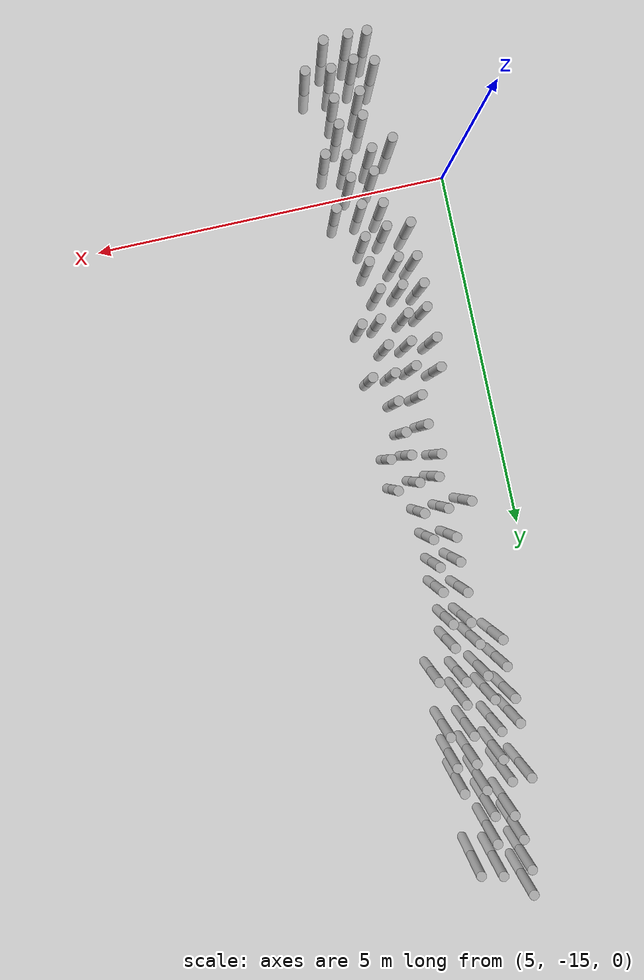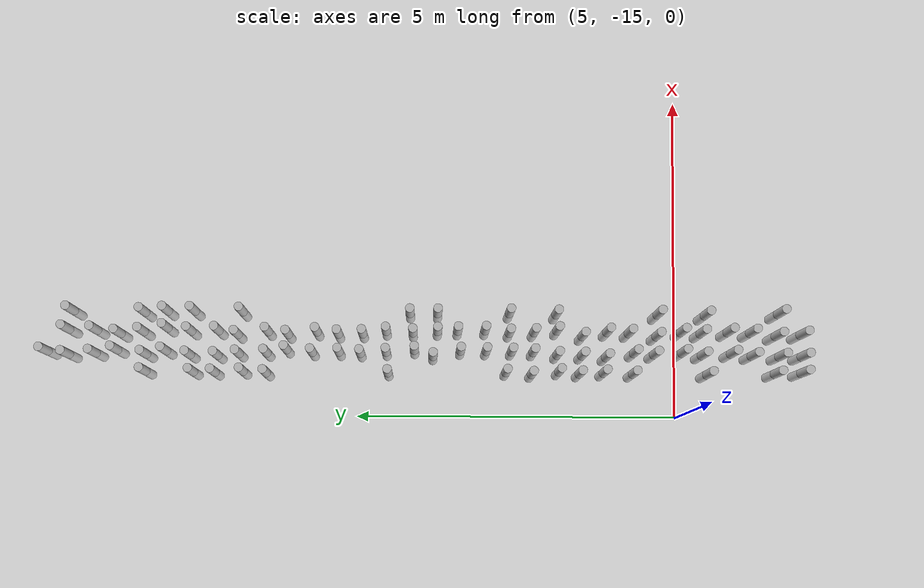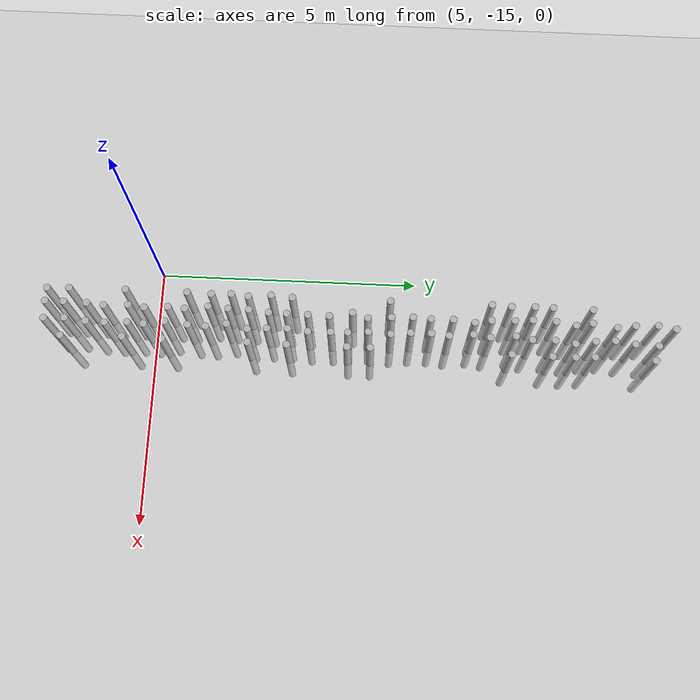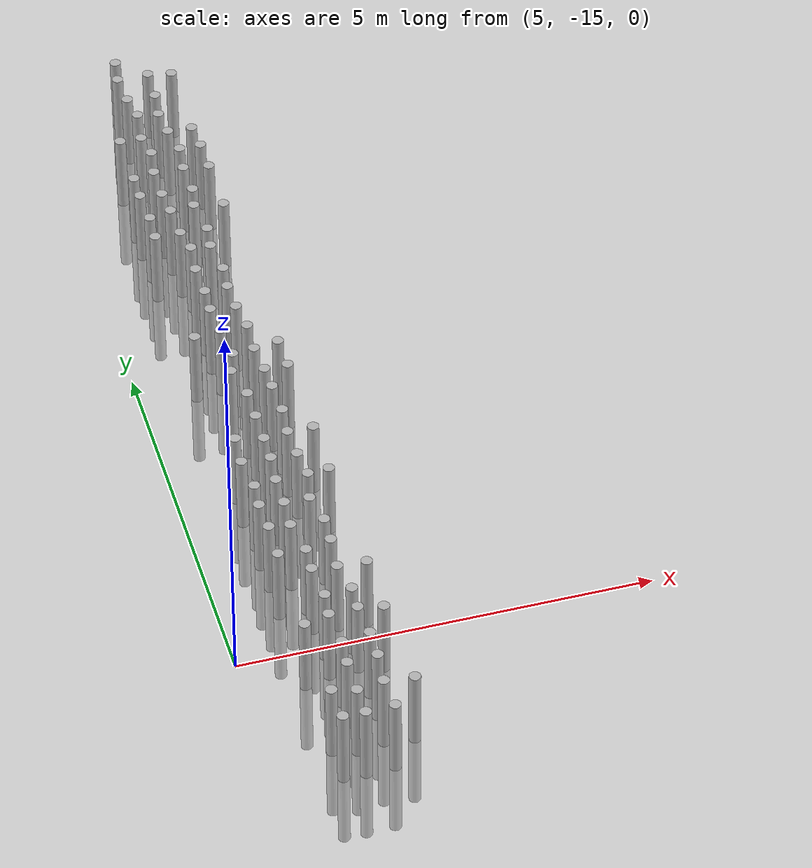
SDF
<sdf version="1.7">
 <world name="farmland_world">
  <model name="ground_plane">
   <static>1</static>
   <link name="link">
    <collision name="collision">
     <geometry><plane><normal>0 0 1</normal><size>40.0 40.0</size></plane></geometry>
     <surface><friction><ode><mu>100</mu><mu2>50</mu2></ode></friction></surface>
    </collision>
    <visual name="visual">
     <cast_shadows>0</cast_shadows>
     <geometry><plane><normal>0 0 1</normal><size>40.0 40.0</size></plane></geometry>
     <material>
      <script><uri>file://media/materials/scripts/gazebo.material</uri><name>Gazebo/Grey</name></script>
     </material>
    </visual>
   </link>
  </model>
  <model name="tree_3_92">
   <static>1</static>
   <link name="link">
    <collision name="collision">
     <geometry><cylinder><radius>0.07</radius><length>2.0</length></cylinder></geometry>
     <surface><friction><ode><mu>100</mu><mu2>50</mu2></ode></friction></surface>
    </collision>
    <visual name="visual">
     <geometry><cylinder><radius>0.07</radius><length>2.0</length></cylinder></geometry>
    </visual>
   </link>
   <pose>5.69538795695511 -6.655714960413385 0 0 0 0</pose>
  </model>
  <model name="tree_3_94">
   <static>1</static>
   <link name="link">
    <collision name="collision">
     <geometry><cylinder><radius>0.07</radius><length>2.0</length></cylinder></geometry>
     <surface><friction><ode><mu>100</mu><mu2>50</mu2></ode></friction></surface>
    </collision>
    <visual name="visual">
     <geometry><cylinder><radius>0.07</radius><length>2.0</length></cylinder></geometry>
    </visual>
   </link>
   <pose>5.68843983011416 -7.408903172919818 0 0 0 0</pose>
  </model>
  <model name="tree_3_95">
   <static>1</static>
   <link name="link">
    <collision name="collision">
     <geometry><cylinder><radius>0.07</radius><length>2.0</length></cylinder></geometry>
     <surface><friction><ode><mu>100</mu><mu2>50</mu2></ode></friction></surface>
    </collision>
    <visual name="visual">
     <geometry><cylinder><radius>0.07</radius><length>2.0</length></cylinder></geometry>
    </visual>
   </link>
   <pose>5.6832412824010365 -7.750614737043579 0 0 0 0</pose>
  </model>
  <model name="tree_3_96">
   <static>1</static>
   <link name="link">
    <collision name="collision">
     <geometry><cylinder><radius>0.07</radius><length>2.0</length></cylinder></geometry>
     <surface><friction><ode><mu>100</mu><mu2>50</mu2></ode></friction></surface>
    </collision>
    <visual name="visual">
     <geometry><cylinder><radius>0.07</radius><length>2.0</length></cylinder></geometry>
    </visual>
   </link>
   <pose>5.699608011552373 -8.194943773879972 0 0 0 0</pose>
  </model>
  <model name="tree_3_97">
   <static>1</static>
   <link name="link">
    <collision name="collision">
     <geometry><cylinder><radius>0.07</radius><length>2.0</length></cylinder></geometry>
     <surface><friction><ode><mu>100</mu><mu2>50</mu2></ode></friction></surface>
    </collision>
    <visual name="visual">
     <geometry><cylinder><radius>0.07</radius><length>2.0</length></cylinder></geometry>
    </visual>
   </link>
   <pose>5.677533680846339 -8.560537409901993 0 0 0 0</pose>
  </model>
  <model name="tree_3_102">
   <static>1</static>
   <link name="link">
    <collision name="collision">
     <geometry><cylinder><radius>0.07</radius><length>2.0</length></cylinder></geometry>
     <surface><friction><ode><mu>100</mu><mu2>50</mu2></ode></friction></surface>
    </collision>
    <visual name="visual">
     <geometry><cylinder><radius>0.07</radius><length>2.0</length></cylinder></geometry>
    </visual>
   </link>
   <pose>5.688896726449414 -10.480572649526275 0 0 0 0</pose>
  </model>
  <model name="tree_3_107">
   <static>1</static>
   <link name="link">
    <collision name="collision">
     <geometry><cylinder><radius>0.07</radius><length>2.0</length></cylinder></geometry>
     <surface><friction><ode><mu>100</mu><mu2>50</mu2></ode></friction></surface>
    </collision>
    <visual name="visual">
     <geometry><cylinder><radius>0.07</radius><length>2.0</length></cylinder></geometry>
    </visual>
   </link>
   <pose>5.704664596698407 -12.340825727181445 0 0 0 0</pose>
  </model>
  <model name="tree_3_108">
   <static>1</static>
   <link name="link">
    <collision name="collision">
     <geometry><cylinder><radius>0.07</radius><length>2.0</length></cylinder></geometry>
     <surface><friction><ode><mu>100</mu><mu2>50</mu2></ode></friction></surface>
    </collision>
    <visual name="visual">
     <geometry><cylinder><radius>0.07</radius><length>2.0</length></cylinder></geometry>
    </visual>
   </link>
   <pose>5.674647896522399 -12.744335948282773 0 0 0 0</pose>
  </model>
  <model name="tree_3_109">
   <static>1</static>
   <link name="link">
    <collision name="collision">
     <geometry><cylinder><radius>0.07</radius><length>2.0</length></cylinder></geometry>
     <surface><friction><ode><mu>100</mu><mu2>50</mu2></ode></friction></surface>
    </collision>
    <visual name="visual">
     <geometry><cylinder><radius>0.07</radius><length>2.0</length></cylinder></geometry>
    </visual>
   </link>
   <pose>5.718537921044214 -13.175551516852972 0 0 0 0</pose>
  </model>
  <model name="tree_3_110">
   <static>1</static>
   <link name="link">
    <collision name="collision">
     <geometry><cylinder><radius>0.07</radius><length>2.0</length></cylinder></geometry>
     <surface><friction><ode><mu>100</mu><mu2>50</mu2></ode></friction></surface>
    </collision>
    <visual name="visual">
     <geometry><cylinder><radius>0.07</radius><length>2.0</length></cylinder></geometry>
    </visual>
   </link>
   <pose>5.687235892407957 -13.498851512787194 0 0 0 0</pose>
  </model>
  <model name="tree_3_111">
   <static>1</static>
   <link name="link">
    <collision name="collision">
     <geometry><cylinder><radius>0.07</radius><length>2.0</length></cylinder></geometry>
     <surface><friction><ode><mu>100</mu><mu2>50</mu2></ode></friction></surface>
    </collision>
    <visual name="visual">
     <geometry><cylinder><radius>0.07</radius><length>2.0</length></cylinder></geometry>
    </visual>
   </link>
   <pose>5.7032426400781935 -13.878649293073119 0 0 0 0</pose>
  </model>
  <model name="tree_3_112">
   <static>1</static>
   <link name="link">
    <collision name="collision">
     <geometry><cylinder><radius>0.07</radius><length>2.0</length></cylinder></geometry>
     <surface><friction><ode><mu>100</mu><mu2>50</mu2></ode></friction></surface>
    </collision>
    <visual name="visual">
     <geometry><cylinder><radius>0.07</radius><length>2.0</length></cylinder></geometry>
    </visual>
   </link>
   <pose>5.68914187885775 -14.338579093604672 0 0 0 0</pose>
  </model>
  <model name="tree_3_115">
   <static>1</static>
   <link name="link">
    <collision name="collision">
     <geometry><cylinder><radius>0.07</radius><length>2.0</length></cylinder></geometry>
     <surface><friction><ode><mu>100</mu><mu2>50</mu2></ode></friction></surface>
    </collision>
    <visual name="visual">
     <geometry><cylinder><radius>0.07</radius><length>2.0</length></cylinder></geometry>
    </visual>
   </link>
   <pose>5.6858496228647 -15.510685018583176 0 0 0 0</pose>
  </model>
  <model name="tree_3_118">
   <static>1</static>
   <link name="link">
    <collision name="collision">
     <geometry><cylinder><radius>0.07</radius><length>2.0</length></cylinder></geometry>
     <surface><friction><ode><mu>100</mu><mu2>50</mu2></ode></friction></surface>
    </collision>
    <visual name="visual">
     <geometry><cylinder><radius>0.07</radius><length>2.0</length></cylinder></geometry>
    </visual>
   </link>
   <pose>5.702327232257455 -16.579218028454573 0 0 0 0</pose>
  </model>
  <model name="tree_3_119">
   <static>1</static>
   <link name="link">
    <collision name="collision">
     <geometry><cylinder><radius>0.07</radius><length>2.0</length></cylinder></geometry>
     <surface><friction><ode><mu>100</mu><mu2>50</mu2></ode></friction></surface>
    </collision>
    <visual name="visual">
     <geometry><cylinder><radius>0.07</radius><length>2.0</length></cylinder></geometry>
    </visual>
   </link>
   <pose>5.717295020736828 -16.998587854408044 0 0 0 0</pose>
  </model>
  <model name="tree_3_128">
   <static>1</static>
   <link name="link">
    <collision name="collision">
     <geometry><cylinder><radius>0.07</radius><length>2.0</length></cylinder></geometry>
     <surface><friction><ode><mu>100</mu><mu2>50</mu2></ode></friction></surface>
    </collision>
    <visual name="visual">
     <geometry><cylinder><radius>0.07</radius><length>2.0</length></cylinder></geometry>
    </visual>
   </link>
   <pose>6.004642433919789 -5.104647629123637 0 0 0 0</pose>
  </model>
  <model name="tree_3_129">
   <static>1</static>
   <link name="link">
    <collision name="collision">
     <geometry><cylinder><radius>0.07</radius><length>2.0</length></cylinder></geometry>
     <surface><friction><ode><mu>100</mu><mu2>50</mu2></ode></friction></surface>
    </collision>
    <visual name="visual">
     <geometry><cylinder><radius>0.07</radius><length>2.0</length></cylinder></geometry>
    </visual>
   </link>
   <pose>5.953439618623379 -5.44151942484449 0 0 0 0</pose>
  </model>
  <model name="tree_3_130">
   <static>1</static>
   <link name="link">
    <collision name="collision">
     <geometry><cylinder><radius>0.07</radius><length>2.0</length></cylinder></geometry>
     <surface><friction><ode><mu>100</mu><mu2>50</mu2></ode></friction></surface>
    </collision>
    <visual name="visual">
     <geometry><cylinder><radius>0.07</radius><length>2.0</length></cylinder></geometry>
    </visual>
   </link>
   <pose>5.975581962296014 -5.866102388615465 0 0 0 0</pose>
  </model>
  <model name="tree_3_131">
   <static>1</static>
   <link name="link">
    <collision name="collision">
     <geometry><cylinder><radius>0.07</radius><length>2.0</length></cylinder></geometry>
     <surface><friction><ode><mu>100</mu><mu2>50</mu2></ode></friction></surface>
    </collision>
    <visual name="visual">
     <geometry><cylinder><radius>0.07</radius><length>2.0</length></cylinder></geometry>
    </visual>
   </link>
   <pose>6.028049354129395 -6.204796127231159 0 0 0 0</pose>
  </model>
  <model name="tree_3_132">
   <static>1</static>
   <link name="link">
    <collision name="collision">
     <geometry><cylinder><radius>0.07</radius><length>2.0</length></cylinder></geometry>
     <surface><friction><ode><mu>100</mu><mu2>50</mu2></ode></friction></surface>
    </collision>
    <visual name="visual">
     <geometry><cylinder><radius>0.07</radius><length>2.0</length></cylinder></geometry>
    </visual>
   </link>
   <pose>5.963185529728986 -6.6633386031107955 0 0 0 0</pose>
  </model>
  <model name="tree_3_133">
   <static>1</static>
   <link name="link">
    <collision name="collision">
     <geometry><cylinder><radius>0.07</radius><length>2.0</length></cylinder></geometry>
     <surface><friction><ode><mu>100</mu><mu2>50</mu2></ode></friction></surface>
    </collision>
    <visual name="visual">
     <geometry><cylinder><radius>0.07</radius><length>2.0</length></cylinder></geometry>
    </visual>
   </link>
   <pose>6.017217678228002 -6.9786092184430535 0 0 0 0</pose>
  </model>
  <model name="tree_3_134">
   <static>1</static>
   <link name="link">
    <collision name="collision">
     <geometry><cylinder><radius>0.07</radius><length>2.0</length></cylinder></geometry>
     <surface><friction><ode><mu>100</mu><mu2>50</mu2></ode></friction></surface>
    </collision>
    <visual name="visual">
     <geometry><cylinder><radius>0.07</radius><length>2.0</length></cylinder></geometry>
    </visual>
   </link>
   <pose>5.957049624864178 -7.354065598328618 0 0 0 0</pose>
  </model>
  <model name="tree_3_135">
   <static>1</static>
   <link name="link">
    <collision name="collision">
     <geometry><cylinder><radius>0.07</radius><length>2.0</length></cylinder></geometry>
     <surface><friction><ode><mu>100</mu><mu2>50</mu2></ode></friction></surface>
    </collision>
    <visual name="visual">
     <geometry><cylinder><radius>0.07</radius><length>2.0</length></cylinder></geometry>
    </visual>
   </link>
   <pose>5.951192935885049 -7.790610006060703 0 0 0 0</pose>
  </model>
  <model name="tree_3_136">
   <static>1</static>
   <link name="link">
    <collision name="collision">
     <geometry><cylinder><radius>0.07</radius><length>2.0</length></cylinder></geometry>
     <surface><friction><ode><mu>100</mu><mu2>50</mu2></ode></friction></surface>
    </collision>
    <visual name="visual">
     <geometry><cylinder><radius>0.07</radius><length>2.0</length></cylinder></geometry>
    </visual>
   </link>
   <pose>5.978368359912921 -8.128737396679563 0 0 0 0</pose>
  </model>
  <model name="tree_3_137">
   <static>1</static>
   <link name="link">
    <collision name="collision">
     <geometry><cylinder><radius>0.07</radius><length>2.0</length></cylinder></geometry>
     <surface><friction><ode><mu>100</mu><mu2>50</mu2></ode></friction></surface>
    </collision>
    <visual name="visual">
     <geometry><cylinder><radius>0.07</radius><length>2.0</length></cylinder></geometry>
    </visual>
   </link>
   <pose>5.990966838137056 -8.56671328515197 0 0 0 0</pose>
  </model>
  <model name="tree_3_138">
   <static>1</static>
   <link name="link">
    <collision name="collision">
     <geometry><cylinder><radius>0.07</radius><length>2.0</length></cylinder></geometry>
     <surface><friction><ode><mu>100</mu><mu2>50</mu2></ode></friction></surface>
    </collision>
    <visual name="visual">
     <geometry><cylinder><radius>0.07</radius><length>2.0</length></cylinder></geometry>
    </visual>
   </link>
   <pose>6.047939019554125 -8.879400452967062 0 0 0 0</pose>
  </model>
  <model name="tree_3_139">
   <static>1</static>
   <link name="link">
    <collision name="collision">
     <geometry><cylinder><radius>0.07</radius><length>2.0</length></cylinder></geometry>
     <surface><friction><ode><mu>100</mu><mu2>50</mu2></ode></friction></surface>
    </collision>
    <visual name="visual">
     <geometry><cylinder><radius>0.07</radius><length>2.0</length></cylinder></geometry>
    </visual>
   </link>
   <pose>6.003708836763221 -9.285078227531288 0 0 0 0</pose>
  </model>
  <model name="tree_3_140">
   <static>1</static>
   <link name="link">
    <collision name="collision">
     <geometry><cylinder><radius>0.07</radius><length>2.0</length></cylinder></geometry>
     <surface><friction><ode><mu>100</mu><mu2>50</mu2></ode></friction></surface>
    </collision>
    <visual name="visual">
     <geometry><cylinder><radius>0.07</radius><length>2.0</length></cylinder></geometry>
    </visual>
   </link>
   <pose>6.011276308284518 -9.707373915382226 0 0 0 0</pose>
  </model>
  <model name="tree_3_141">
   <static>1</static>
   <link name="link">
    <collision name="collision">
     <geometry><cylinder><radius>0.07</radius><length>2.0</length></cylinder></geometry>
     <surface><friction><ode><mu>100</mu><mu2>50</mu2></ode></friction></surface>
    </collision>
    <visual name="visual">
     <geometry><cylinder><radius>0.07</radius><length>2.0</length></cylinder></geometry>
    </visual>
   </link>
   <pose>5.992550428009455 -10.044506635352215 0 0 0 0</pose>
  </model>
  <model name="tree_3_142">
   <static>1</static>
   <link name="link">
    <collision name="collision">
     <geometry><cylinder><radius>0.07</radius><length>2.0</length></cylinder></geometry>
     <surface><friction><ode><mu>100</mu><mu2>50</mu2></ode></friction></surface>
    </collision>
    <visual name="visual">
     <geometry><cylinder><radius>0.07</radius><length>2.0</length></cylinder></geometry>
    </visual>
   </link>
   <pose>6.0151825535986845 -10.449686416341919 0 0 0 0</pose>
  </model>
  <model name="tree_3_143">
   <static>1</static>
   <link name="link">
    <collision name="collision">
     <geometry><cylinder><radius>0.07</radius><length>2.0</length></cylinder></geometry>
     <surface><friction><ode><mu>100</mu><mu2>50</mu2></ode></friction></surface>
    </collision>
    <visual name="visual">
     <geometry><cylinder><radius>0.07</radius><length>2.0</length></cylinder></geometry>
    </visual>
   </link>
   <pose>6.048428204136382 -10.895644905377099 0 0 0 0</pose>
  </model>
  <model name="tree_3_144">
   <static>1</static>
   <link name="link">
    <collision name="collision">
     <geometry><cylinder><radius>0.07</radius><length>2.0</length></cylinder></geometry>
     <surface><friction><ode><mu>100</mu><mu2>50</mu2></ode></friction></surface>
    </collision>
    <visual name="visual">
     <geometry><cylinder><radius>0.07</radius><length>2.0</length></cylinder></geometry>
    </visual>
   </link>
   <pose>5.9532121765386385 -11.188924903807731 0 0 0 0</pose>
  </model>
  <model name="tree_3_145">
   <static>1</static>
   <link name="link">
    <collision name="collision">
     <geometry><cylinder><radius>0.07</radius><length>2.0</length></cylinder></geometry>
     <surface><friction><ode><mu>100</mu><mu2>50</mu2></ode></friction></surface>
    </collision>
    <visual name="visual">
     <geometry><cylinder><radius>0.07</radius><length>2.0</length></cylinder></geometry>
    </visual>
   </link>
   <pose>6.040870552976659 -11.622331448428275 0 0 0 0</pose>
  </model>
  <model name="tree_3_146">
   <static>1</static>
   <link name="link">
    <collision name="collision">
     <geometry><cylinder><radius>0.07</radius><length>2.0</length></cylinder></geometry>
     <surface><friction><ode><mu>100</mu><mu2>50</mu2></ode></friction></surface>
    </collision>
    <visual name="visual">
     <geometry><cylinder><radius>0.07</radius><length>2.0</length></cylinder></geometry>
    </visual>
   </link>
   <pose>6.035968698345765 -12.0280065272549 0 0 0 0</pose>
  </model>
  <model name="tree_3_147">
   <static>1</static>
   <link name="link">
    <collision name="collision">
     <geometry><cylinder><radius>0.07</radius><length>2.0</length></cylinder></geometry>
     <surface><friction><ode><mu>100</mu><mu2>50</mu2></ode></friction></surface>
    </collision>
    <visual name="visual">
     <geometry><cylinder><radius>0.07</radius><length>2.0</length></cylinder></geometry>
    </visual>
   </link>
   <pose>6.031194187593782 -12.4292687998147 0 0 0 0</pose>
  </model>
  <model name="tree_3_148">
   <static>1</static>
   <link name="link">
    <collision name="collision">
     <geometry><cylinder><radius>0.07</radius><length>2.0</length></cylinder></geometry>
     <surface><friction><ode><mu>100</mu><mu2>50</mu2></ode></friction></surface>
    </collision>
    <visual name="visual">
     <geometry><cylinder><radius>0.07</radius><length>2.0</length></cylinder></geometry>
    </visual>
   </link>
   <pose>6.023309249522216 -12.768784433256469 0 0 0 0</pose>
  </model>
  <model name="tree_3_149">
   <static>1</static>
   <link name="link">
    <collision name="collision">
     <geometry><cylinder><radius>0.07</radius><length>2.0</length></cylinder></geometry>
     <surface><friction><ode><mu>100</mu><mu2>50</mu2></ode></friction></surface>
    </collision>
    <visual name="visual">
     <geometry><cylinder><radius>0.07</radius><length>2.0</length></cylinder></geometry>
    </visual>
   </link>
   <pose>5.982779189131329 -13.146257692901061 0 0 0 0</pose>
  </model>
  <model name="tree_3_150">
   <static>1</static>
   <link name="link">
    <collision name="collision">
     <geometry><cylinder><radius>0.07</radius><length>2.0</length></cylinder></geometry>
     <surface><friction><ode><mu>100</mu><mu2>50</mu2></ode></friction></surface>
    </collision>
    <visual name="visual">
     <geometry><cylinder><radius>0.07</radius><length>2.0</length></cylinder></geometry>
    </visual>
   </link>
   <pose>5.975919717361207 -13.53841927493112 0 0 0 0</pose>
  </model>
  <model name="tree_3_151">
   <static>1</static>
   <link name="link">
    <collision name="collision">
     <geometry><cylinder><radius>0.07</radius><length>2.0</length></cylinder></geometry>
     <surface><friction><ode><mu>100</mu><mu2>50</mu2></ode></friction></surface>
    </collision>
    <visual name="visual">
     <geometry><cylinder><radius>0.07</radius><length>2.0</length></cylinder></geometry>
    </visual>
   </link>
   <pose>5.950839220570027 -13.91666408587537 0 0 0 0</pose>
  </model>
  <model name="tree_3_152">
   <static>1</static>
   <link name="link">
    <collision name="collision">
     <geometry><cylinder><radius>0.07</radius><length>2.0</length></cylinder></geometry>
     <surface><friction><ode><mu>100</mu><mu2>50</mu2></ode></friction></surface>
    </collision>
    <visual name="visual">
     <geometry><cylinder><radius>0.07</radius><length>2.0</length></cylinder></geometry>
    </visual>
   </link>
   <pose>6.016776091249071 -14.3575559044686 0 0 0 0</pose>
  </model>
  <model name="tree_3_153">
   <static>1</static>
   <link name="link">
    <collision name="collision">
     <geometry><cylinder><radius>0.07</radius><length>2.0</length></cylinder></geometry>
     <surface><friction><ode><mu>100</mu><mu2>50</mu2></ode></friction></surface>
    </collision>
    <visual name="visual">
     <geometry><cylinder><radius>0.07</radius><length>2.0</length></cylinder></geometry>
    </visual>
   </link>
   <pose>5.996683991861683 -14.674666423920337 0 0 0 0</pose>
  </model>
  <model name="tree_3_154">
   <static>1</static>
   <link name="link">
    <collision name="collision">
     <geometry><cylinder><radius>0.07</radius><length>2.0</length></cylinder></geometry>
     <surface><friction><ode><mu>100</mu><mu2>50</mu2></ode></friction></surface>
    </collision>
    <visual name="visual">
     <geometry><cylinder><radius>0.07</radius><length>2.0</length></cylinder></geometry>
    </visual>
   </link>
   <pose>6.026736970233003 -15.119804874929264 0 0 0 0</pose>
  </model>
  <model name="tree_3_155">
   <static>1</static>
   <link name="link">
    <collision name="collision">
     <geometry><cylinder><radius>0.07</radius><length>2.0</length></cylinder></geometry>
     <surface><friction><ode><mu>100</mu><mu2>50</mu2></ode></friction></surface>
    </collision>
    <visual name="visual">
     <geometry><cylinder><radius>0.07</radius><length>2.0</length></cylinder></geometry>
    </visual>
   </link>
   <pose>5.989473914495799 -15.430961786371144 0 0 0 0</pose>
  </model>
  <model name="tree_3_156">
   <static>1</static>
   <link name="link">
    <collision name="collision">
     <geometry><cylinder><radius>0.07</radius><length>2.0</length></cylinder></geometry>
     <surface><friction><ode><mu>100</mu><mu2>50</mu2></ode></friction></surface>
    </collision>
    <visual name="visual">
     <geometry><cylinder><radius>0.07</radius><length>2.0</length></cylinder></geometry>
    </visual>
   </link>
   <pose>6.015928646878999 -15.89148565942578 0 0 0 0</pose>
  </model>
  <model name="tree_3_157">
   <static>1</static>
   <link name="link">
    <collision name="collision">
     <geometry><cylinder><radius>0.07</radius><length>2.0</length></cylinder></geometry>
     <surface><friction><ode><mu>100</mu><mu2>50</mu2></ode></friction></surface>
    </collision>
    <visual name="visual">
     <geometry><cylinder><radius>0.07</radius><length>2.0</length></cylinder></geometry>
    </visual>
   </link>
   <pose>5.9842503894834165 -16.217487227861444 0 0 0 0</pose>
  </model>
  <model name="tree_3_158">
   <static>1</static>
   <link name="link">
    <collision name="collision">
     <geometry><cylinder><radius>0.07</radius><length>2.0</length></cylinder></geometry>
     <surface><friction><ode><mu>100</mu><mu2>50</mu2></ode></friction></surface>
    </collision>
    <visual name="visual">
     <geometry><cylinder><radius>0.07</radius><length>2.0</length></cylinder></geometry>
    </visual>
   </link>
   <pose>5.97660943762031 -16.654653791994217 0 0 0 0</pose>
  </model>
  <model name="tree_3_159">
   <static>1</static>
   <link name="link">
    <collision name="collision">
     <geometry><cylinder><radius>0.07</radius><length>2.0</length></cylinder></geometry>
     <surface><friction><ode><mu>100</mu><mu2>50</mu2></ode></friction></surface>
    </collision>
    <visual name="visual">
     <geometry><cylinder><radius>0.07</radius><length>2.0</length></cylinder></geometry>
    </visual>
   </link>
   <pose>5.977571834600972 -17.00724589896346 0 0 0 0</pose>
  </model>
  <model name="tree_3_169">
   <static>1</static>
   <link name="link">
    <collision name="collision">
     <geometry><cylinder><radius>0.07</radius><length>2.0</length></cylinder></geometry>
     <surface><friction><ode><mu>100</mu><mu2>50</mu2></ode></friction></surface>
    </collision>
    <visual name="visual">
     <geometry><cylinder><radius>0.07</radius><length>2.0</length></cylinder></geometry>
    </visual>
   </link>
   <pose>6.349801518347255 -5.438048238426436 0 0 0 0</pose>
  </model>
  <model name="tree_3_170">
   <static>1</static>
   <link name="link">
    <collision name="collision">
     <geometry><cylinder><radius>0.07</radius><length>2.0</length></cylinder></geometry>
     <surface><friction><ode><mu>100</mu><mu2>50</mu2></ode></friction></surface>
    </collision>
    <visual name="visual">
     <geometry><cylinder><radius>0.07</radius><length>2.0</length></cylinder></geometry>
    </visual>
   </link>
   <pose>6.336213914707262 -5.879206005592546 0 0 0 0</pose>
  </model>
  <model name="tree_3_171">
   <static>1</static>
   <link name="link">
    <collision name="collision">
     <geometry><cylinder><radius>0.07</radius><length>2.0</length></cylinder></geometry>
     <surface><friction><ode><mu>100</mu><mu2>50</mu2></ode></friction></surface>
    </collision>
    <visual name="visual">
     <geometry><cylinder><radius>0.07</radius><length>2.0</length></cylinder></geometry>
    </visual>
   </link>
   <pose>6.286960998903043 -6.2540153882121094 0 0 0 0</pose>
  </model>
  <model name="tree_3_172">
   <static>1</static>
   <link name="link">
    <collision name="collision">
     <geometry><cylinder><radius>0.07</radius><length>2.0</length></cylinder></geometry>
     <surface><friction><ode><mu>100</mu><mu2>50</mu2></ode></friction></surface>
    </collision>
    <visual name="visual">
     <geometry><cylinder><radius>0.07</radius><length>2.0</length></cylinder></geometry>
    </visual>
   </link>
   <pose>6.318589429664135 -6.619410283719295 0 0 0 0</pose>
  </model>
  <model name="tree_3_173">
   <static>1</static>
   <link name="link">
    <collision name="collision">
     <geometry><cylinder><radius>0.07</radius><length>2.0</length></cylinder></geometry>
     <surface><friction><ode><mu>100</mu><mu2>50</mu2></ode></friction></surface>
    </collision>
    <visual name="visual">
     <geometry><cylinder><radius>0.07</radius><length>2.0</length></cylinder></geometry>
    </visual>
   </link>
   <pose>6.378486984444482 -6.994646581650358 0 0 0 0</pose>
  </model>
  <model name="tree_3_174">
   <static>1</static>
   <link name="link">
    <collision name="collision">
     <geometry><cylinder><radius>0.07</radius><length>2.0</length></cylinder></geometry>
     <surface><friction><ode><mu>100</mu><mu2>50</mu2></ode></friction></surface>
    </collision>
    <visual name="visual">
     <geometry><cylinder><radius>0.07</radius><length>2.0</length></cylinder></geometry>
    </visual>
   </link>
   <pose>6.331318793105679 -7.3710716403791965 0 0 0 0</pose>
  </model>
  <model name="tree_3_175">
   <static>1</static>
   <link name="link">
    <collision name="collision">
     <geometry><cylinder><radius>0.07</radius><length>2.0</length></cylinder></geometry>
     <surface><friction><ode><mu>100</mu><mu2>50</mu2></ode></friction></surface>
    </collision>
    <visual name="visual">
     <geometry><cylinder><radius>0.07</radius><length>2.0</length></cylinder></geometry>
    </visual>
   </link>
   <pose>6.340086680248613 -7.802113720302142 0 0 0 0</pose>
  </model>
  <model name="tree_3_176">
   <static>1</static>
   <link name="link">
    <collision name="collision">
     <geometry><cylinder><radius>0.07</radius><length>2.0</length></cylinder></geometry>
     <surface><friction><ode><mu>100</mu><mu2>50</mu2></ode></friction></surface>
    </collision>
    <visual name="visual">
     <geometry><cylinder><radius>0.07</radius><length>2.0</length></cylinder></geometry>
    </visual>
   </link>
   <pose>6.280008897285396 -8.107419408895707 0 0 0 0</pose>
  </model>
  <model name="tree_3_177">
   <static>1</static>
   <link name="link">
    <collision name="collision">
     <geometry><cylinder><radius>0.07</radius><length>2.0</length></cylinder></geometry>
     <surface><friction><ode><mu>100</mu><mu2>50</mu2></ode></friction></surface>
    </collision>
    <visual name="visual">
     <geometry><cylinder><radius>0.07</radius><length>2.0</length></cylinder></geometry>
    </visual>
   </link>
   <pose>6.3294804119540045 -8.58413471897728 0 0 0 0</pose>
  </model>
  <model name="tree_3_178">
   <static>1</static>
   <link name="link">
    <collision name="collision">
     <geometry><cylinder><radius>0.07</radius><length>2.0</length></cylinder></geometry>
     <surface><friction><ode><mu>100</mu><mu2>50</mu2></ode></friction></surface>
    </collision>
    <visual name="visual">
     <geometry><cylinder><radius>0.07</radius><length>2.0</length></cylinder></geometry>
    </visual>
   </link>
   <pose>6.286406454360779 -8.903158293004584 0 0 0 0</pose>
  </model>
  <model name="tree_3_179">
   <static>1</static>
   <link name="link">
    <collision name="collision">
     <geometry><cylinder><radius>0.07</radius><length>2.0</length></cylinder></geometry>
     <surface><friction><ode><mu>100</mu><mu2>50</mu2></ode></friction></surface>
    </collision>
    <visual name="visual">
     <geometry><cylinder><radius>0.07</radius><length>2.0</length></cylinder></geometry>
    </visual>
   </link>
   <pose>6.32936261605557 -9.357201577107078 0 0 0 0</pose>
  </model>
  <model name="tree_3_180">
   <static>1</static>
   <link name="link">
    <collision name="collision">
     <geometry><cylinder><radius>0.07</radius><length>2.0</length></cylinder></geometry>
     <surface><friction><ode><mu>100</mu><mu2>50</mu2></ode></friction></surface>
    </collision>
    <visual name="visual">
     <geometry><cylinder><radius>0.07</radius><length>2.0</length></cylinder></geometry>
    </visual>
   </link>
   <pose>6.296793390485886 -9.69329657435915 0 0 0 0</pose>
  </model>
  <model name="tree_3_181">
   <static>1</static>
   <link name="link">
    <collision name="collision">
     <geometry><cylinder><radius>0.07</radius><length>2.0</length></cylinder></geometry>
     <surface><friction><ode><mu>100</mu><mu2>50</mu2></ode></friction></surface>
    </collision>
    <visual name="visual">
     <geometry><cylinder><radius>0.07</radius><length>2.0</length></cylinder></geometry>
    </visual>
   </link>
   <pose>6.3031362938645294 -10.079015720883302 0 0 0 0</pose>
  </model>
  <model name="tree_3_182">
   <static>1</static>
   <link name="link">
    <collision name="collision">
     <geometry><cylinder><radius>0.07</radius><length>2.0</length></cylinder></geometry>
     <surface><friction><ode><mu>100</mu><mu2>50</mu2></ode></friction></surface>
    </collision>
    <visual name="visual">
     <geometry><cylinder><radius>0.07</radius><length>2.0</length></cylinder></geometry>
    </visual>
   </link>
   <pose>6.3453046411184255 -10.451094528647438 0 0 0 0</pose>
  </model>
  <model name="tree_3_183">
   <static>1</static>
   <link name="link">
    <collision name="collision">
     <geometry><cylinder><radius>0.07</radius><length>2.0</length></cylinder></geometry>
     <surface><friction><ode><mu>100</mu><mu2>50</mu2></ode></friction></surface>
    </collision>
    <visual name="visual">
     <geometry><cylinder><radius>0.07</radius><length>2.0</length></cylinder></geometry>
    </visual>
   </link>
   <pose>6.3204721962849675 -10.873078881254044 0 0 0 0</pose>
  </model>
  <model name="tree_3_184">
   <static>1</static>
   <link name="link">
    <collision name="collision">
     <geometry><cylinder><radius>0.07</radius><length>2.0</length></cylinder></geometry>
     <surface><friction><ode><mu>100</mu><mu2>50</mu2></ode></friction></surface>
    </collision>
    <visual name="visual">
     <geometry><cylinder><radius>0.07</radius><length>2.0</length></cylinder></geometry>
    </visual>
   </link>
   <pose>6.3472146869066135 -11.259840249280234 0 0 0 0</pose>
  </model>
  <model name="tree_3_185">
   <static>1</static>
   <link name="link">
    <collision name="collision">
     <geometry><cylinder><radius>0.07</radius><length>2.0</length></cylinder></geometry>
     <surface><friction><ode><mu>100</mu><mu2>50</mu2></ode></friction></surface>
    </collision>
    <visual name="visual">
     <geometry><cylinder><radius>0.07</radius><length>2.0</length></cylinder></geometry>
    </visual>
   </link>
   <pose>6.355554680842116 -11.578451191691551 0 0 0 0</pose>
  </model>
  <model name="tree_3_186">
   <static>1</static>
   <link name="link">
    <collision name="collision">
     <geometry><cylinder><radius>0.07</radius><length>2.0</length></cylinder></geometry>
     <surface><friction><ode><mu>100</mu><mu2>50</mu2></ode></friction></surface>
    </collision>
    <visual name="visual">
     <geometry><cylinder><radius>0.07</radius><length>2.0</length></cylinder></geometry>
    </visual>
   </link>
   <pose>6.364961116713481 -12.010617306255265 0 0 0 0</pose>
  </model>
  <model name="tree_3_187">
   <static>1</static>
   <link name="link">
    <collision name="collision">
     <geometry><cylinder><radius>0.07</radius><length>2.0</length></cylinder></geometry>
     <surface><friction><ode><mu>100</mu><mu2>50</mu2></ode></friction></surface>
    </collision>
    <visual name="visual">
     <geometry><cylinder><radius>0.07</radius><length>2.0</length></cylinder></geometry>
    </visual>
   </link>
   <pose>6.325613298639903 -12.393159123871285 0 0 0 0</pose>
  </model>
  <model name="tree_3_188">
   <static>1</static>
   <link name="link">
    <collision name="collision">
     <geometry><cylinder><radius>0.07</radius><length>2.0</length></cylinder></geometry>
     <surface><friction><ode><mu>100</mu><mu2>50</mu2></ode></friction></surface>
    </collision>
    <visual name="visual">
     <geometry><cylinder><radius>0.07</radius><length>2.0</length></cylinder></geometry>
    </visual>
   </link>
   <pose>6.336175222922606 -12.782922289468639 0 0 0 0</pose>
  </model>
  <model name="tree_3_189">
   <static>1</static>
   <link name="link">
    <collision name="collision">
     <geometry><cylinder><radius>0.07</radius><length>2.0</length></cylinder></geometry>
     <surface><friction><ode><mu>100</mu><mu2>50</mu2></ode></friction></surface>
    </collision>
    <visual name="visual">
     <geometry><cylinder><radius>0.07</radius><length>2.0</length></cylinder></geometry>
    </visual>
   </link>
   <pose>6.3673237988580516 -13.146004804354908 0 0 0 0</pose>
  </model>
  <model name="tree_3_190">
   <static>1</static>
   <link name="link">
    <collision name="collision">
     <geometry><cylinder><radius>0.07</radius><length>2.0</length></cylinder></geometry>
     <surface><friction><ode><mu>100</mu><mu2>50</mu2></ode></friction></surface>
    </collision>
    <visual name="visual">
     <geometry><cylinder><radius>0.07</radius><length>2.0</length></cylinder></geometry>
    </visual>
   </link>
   <pose>6.281017141039113 -13.544880912309738 0 0 0 0</pose>
  </model>
  <model name="tree_3_191">
   <static>1</static>
   <link name="link">
    <collision name="collision">
     <geometry><cylinder><radius>0.07</radius><length>2.0</length></cylinder></geometry>
     <surface><friction><ode><mu>100</mu><mu2>50</mu2></ode></friction></surface>
    </collision>
    <visual name="visual">
     <geometry><cylinder><radius>0.07</radius><length>2.0</length></cylinder></geometry>
    </visual>
   </link>
   <pose>6.347846776432856 -13.935360650070148 0 0 0 0</pose>
  </model>
  <model name="tree_3_192">
   <static>1</static>
   <link name="link">
    <collision name="collision">
     <geometry><cylinder><radius>0.07</radius><length>2.0</length></cylinder></geometry>
     <surface><friction><ode><mu>100</mu><mu2>50</mu2></ode></friction></surface>
    </collision>
    <visual name="visual">
     <geometry><cylinder><radius>0.07</radius><length>2.0</length></cylinder></geometry>
    </visual>
   </link>
   <pose>6.331528889444941 -14.275955810066609 0 0 0 0</pose>
  </model>
  <model name="tree_3_193">
   <static>1</static>
   <link name="link">
    <collision name="collision">
     <geometry><cylinder><radius>0.07</radius><length>2.0</length></cylinder></geometry>
     <surface><friction><ode><mu>100</mu><mu2>50</mu2></ode></friction></surface>
    </collision>
    <visual name="visual">
     <geometry><cylinder><radius>0.07</radius><length>2.0</length></cylinder></geometry>
    </visual>
   </link>
   <pose>6.285525437453713 -14.712342081171967 0 0 0 0</pose>
  </model>
  <model name="tree_3_194">
   <static>1</static>
   <link name="link">
    <collision name="collision">
     <geometry><cylinder><radius>0.07</radius><length>2.0</length></cylinder></geometry>
     <surface><friction><ode><mu>100</mu><mu2>50</mu2></ode></friction></surface>
    </collision>
    <visual name="visual">
     <geometry><cylinder><radius>0.07</radius><length>2.0</length></cylinder></geometry>
    </visual>
   </link>
   <pose>6.350817435046087 -15.101819090791361 0 0 0 0</pose>
  </model>
  <model name="tree_3_195">
   <static>1</static>
   <link name="link">
    <collision name="collision">
     <geometry><cylinder><radius>0.07</radius><length>2.0</length></cylinder></geometry>
     <surface><friction><ode><mu>100</mu><mu2>50</mu2></ode></friction></surface>
    </collision>
    <visual name="visual">
     <geometry><cylinder><radius>0.07</radius><length>2.0</length></cylinder></geometry>
    </visual>
   </link>
   <pose>6.3329165851387605 -15.411863953507337 0 0 0 0</pose>
  </model>
  <model name="tree_3_196">
   <static>1</static>
   <link name="link">
    <collision name="collision">
     <geometry><cylinder><radius>0.07</radius><length>2.0</length></cylinder></geometry>
     <surface><friction><ode><mu>100</mu><mu2>50</mu2></ode></friction></surface>
    </collision>
    <visual name="visual">
     <geometry><cylinder><radius>0.07</radius><length>2.0</length></cylinder></geometry>
    </visual>
   </link>
   <pose>6.356179441374129 -15.839525955418338 0 0 0 0</pose>
  </model>
  <model name="tree_3_197">
   <static>1</static>
   <link name="link">
    <collision name="collision">
     <geometry><cylinder><radius>0.07</radius><length>2.0</length></cylinder></geometry>
     <surface><friction><ode><mu>100</mu><mu2>50</mu2></ode></friction></surface>
    </collision>
    <visual name="visual">
     <geometry><cylinder><radius>0.07</radius><length>2.0</length></cylinder></geometry>
    </visual>
   </link>
   <pose>6.345606586812102 -16.195382212217638 0 0 0 0</pose>
  </model>
  <model name="tree_3_198">
   <static>1</static>
   <link name="link">
    <collision name="collision">
     <geometry><cylinder><radius>0.07</radius><length>2.0</length></cylinder></geometry>
     <surface><friction><ode><mu>100</mu><mu2>50</mu2></ode></friction></surface>
    </collision>
    <visual name="visual">
     <geometry><cylinder><radius>0.07</radius><length>2.0</length></cylinder></geometry>
    </visual>
   </link>
   <pose>6.299427596414352 -16.600340075312296 0 0 0 0</pose>
  </model>
  <model name="tree_3_199">
   <static>1</static>
   <link name="link">
    <collision name="collision">
     <geometry><cylinder><radius>0.07</radius><length>2.0</length></cylinder></geometry>
     <surface><friction><ode><mu>100</mu><mu2>50</mu2></ode></friction></surface>
    </collision>
    <visual name="visual">
     <geometry><cylinder><radius>0.07</radius><length>2.0</length></cylinder></geometry>
    </visual>
   </link>
   <pose>6.320463972772622 -16.99226432190092 0 0 0 0</pose>
  </model>
  <model name="tree_3_209">
   <static>1</static>
   <link name="link">
    <collision name="collision">
     <geometry><cylinder><radius>0.07</radius><length>2.0</length></cylinder></geometry>
     <surface><friction><ode><mu>100</mu><mu2>50</mu2></ode></friction></surface>
    </collision>
    <visual name="visual">
     <geometry><cylinder><radius>0.07</radius><length>2.0</length></cylinder></geometry>
    </visual>
   </link>
   <pose>6.643858463863787 -5.5042099213718805 0 0 0 0</pose>
  </model>
  <model name="tree_3_212">
   <static>1</static>
   <link name="link">
    <collision name="collision">
     <geometry><cylinder><radius>0.07</radius><length>2.0</length></cylinder></geometry>
     <surface><friction><ode><mu>100</mu><mu2>50</mu2></ode></friction></surface>
    </collision>
    <visual name="visual">
     <geometry><cylinder><radius>0.07</radius><length>2.0</length></cylinder></geometry>
    </visual>
   </link>
   <pose>6.624344761812218 -6.635947088467984 0 0 0 0</pose>
  </model>
  <model name="tree_3_213">
   <static>1</static>
   <link name="link">
    <collision name="collision">
     <geometry><cylinder><radius>0.07</radius><length>2.0</length></cylinder></geometry>
     <surface><friction><ode><mu>100</mu><mu2>50</mu2></ode></friction></surface>
    </collision>
    <visual name="visual">
     <geometry><cylinder><radius>0.07</radius><length>2.0</length></cylinder></geometry>
    </visual>
   </link>
   <pose>6.6469298180322705 -6.994599870783903 0 0 0 0</pose>
  </model>
  <model name="tree_3_214">
   <static>1</static>
   <link name="link">
    <collision name="collision">
     <geometry><cylinder><radius>0.07</radius><length>2.0</length></cylinder></geometry>
     <surface><friction><ode><mu>100</mu><mu2>50</mu2></ode></friction></surface>
    </collision>
    <visual name="visual">
     <geometry><cylinder><radius>0.07</radius><length>2.0</length></cylinder></geometry>
    </visual>
   </link>
   <pose>6.647291793087742 -7.422296297668502 0 0 0 0</pose>
  </model>
  <model name="tree_3_216">
   <static>1</static>
   <link name="link">
    <collision name="collision">
     <geometry><cylinder><radius>0.07</radius><length>2.0</length></cylinder></geometry>
     <surface><friction><ode><mu>100</mu><mu2>50</mu2></ode></friction></surface>
    </collision>
    <visual name="visual">
     <geometry><cylinder><radius>0.07</radius><length>2.0</length></cylinder></geometry>
    </visual>
   </link>
   <pose>6.639891721477061 -8.17986005666218 0 0 0 0</pose>
  </model>
  <model name="tree_3_223">
   <static>1</static>
   <link name="link">
    <collision name="collision">
     <geometry><cylinder><radius>0.07</radius><length>2.0</length></cylinder></geometry>
     <surface><friction><ode><mu>100</mu><mu2>50</mu2></ode></friction></surface>
    </collision>
    <visual name="visual">
     <geometry><cylinder><radius>0.07</radius><length>2.0</length></cylinder></geometry>
    </visual>
   </link>
   <pose>6.6292188922479545 -10.824487643672455 0 0 0 0</pose>
  </model>
  <model name="tree_3_224">
   <static>1</static>
   <link name="link">
    <collision name="collision">
     <geometry><cylinder><radius>0.07</radius><length>2.0</length></cylinder></geometry>
     <surface><friction><ode><mu>100</mu><mu2>50</mu2></ode></friction></surface>
    </collision>
    <visual name="visual">
     <geometry><cylinder><radius>0.07</radius><length>2.0</length></cylinder></geometry>
    </visual>
   </link>
   <pose>6.631008134056223 -11.26086533103181 0 0 0 0</pose>
  </model>
  <model name="tree_3_227">
   <static>1</static>
   <link name="link">
    <collision name="collision">
     <geometry><cylinder><radius>0.07</radius><length>2.0</length></cylinder></geometry>
     <surface><friction><ode><mu>100</mu><mu2>50</mu2></ode></friction></surface>
    </collision>
    <visual name="visual">
     <geometry><cylinder><radius>0.07</radius><length>2.0</length></cylinder></geometry>
    </visual>
   </link>
   <pose>6.637392915072167 -12.395242187381967 0 0 0 0</pose>
  </model>
  <model name="tree_3_229">
   <static>1</static>
   <link name="link">
    <collision name="collision">
     <geometry><cylinder><radius>0.07</radius><length>2.0</length></cylinder></geometry>
     <surface><friction><ode><mu>100</mu><mu2>50</mu2></ode></friction></surface>
    </collision>
    <visual name="visual">
     <geometry><cylinder><radius>0.07</radius><length>2.0</length></cylinder></geometry>
    </visual>
   </link>
   <pose>6.623992918975954 -13.13106874748943 0 0 0 0</pose>
  </model>
  <model name="tree_3_233">
   <static>1</static>
   <link name="link">
    <collision name="collision">
     <geometry><cylinder><radius>0.07</radius><length>2.0</length></cylinder></geometry>
     <surface><friction><ode><mu>100</mu><mu2>50</mu2></ode></friction></surface>
    </collision>
    <visual name="visual">
     <geometry><cylinder><radius>0.07</radius><length>2.0</length></cylinder></geometry>
    </visual>
   </link>
   <pose>6.629444567237093 -14.733612138728786 0 0 0 0</pose>
  </model>
  <model name="tree_3_235">
   <static>1</static>
   <link name="link">
    <collision name="collision">
     <geometry><cylinder><radius>0.07</radius><length>2.0</length></cylinder></geometry>
     <surface><friction><ode><mu>100</mu><mu2>50</mu2></ode></friction></surface>
    </collision>
    <visual name="visual">
     <geometry><cylinder><radius>0.07</radius><length>2.0</length></cylinder></geometry>
    </visual>
   </link>
   <pose>6.620372994474459 -15.480874336558214 0 0 0 0</pose>
  </model>
  <model name="tree_3_238">
   <static>1</static>
   <link name="link">
    <collision name="collision">
     <geometry><cylinder><radius>0.07</radius><length>2.0</length></cylinder></geometry>
     <surface><friction><ode><mu>100</mu><mu2>50</mu2></ode></friction></surface>
    </collision>
    <visual name="visual">
     <geometry><cylinder><radius>0.07</radius><length>2.0</length></cylinder></geometry>
    </visual>
   </link>
   <pose>6.64867744859368 -16.640462132735905 0 0 0 0</pose>
  </model>
 </world>
</sdf>
